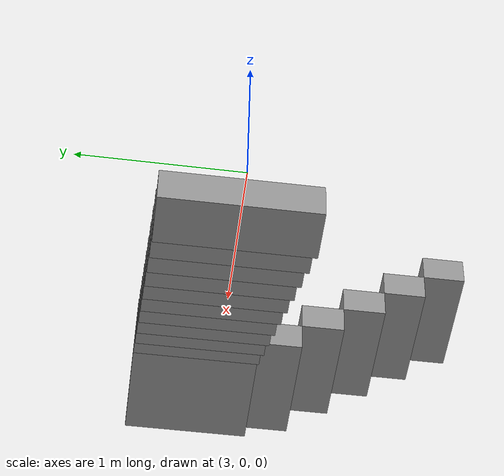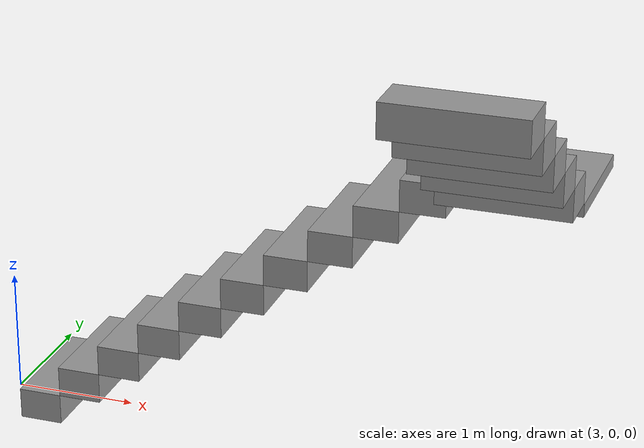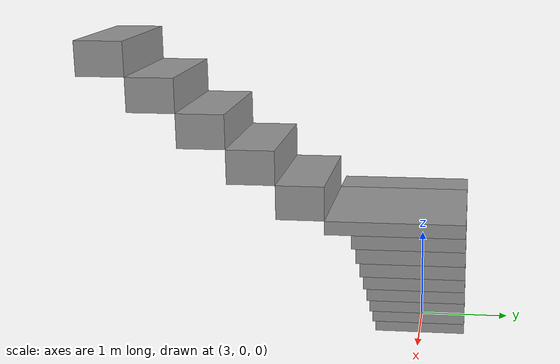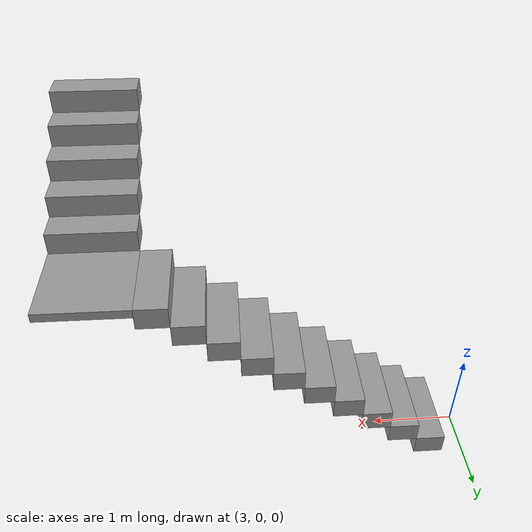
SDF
<?xml version='1.0'?>
<sdf version='1.6'>
  <model name='stairs_environment2'>
    <pose frame=''>7.5 -1.5 0 0 -0 1.57</pose>
    <link name='Floor_1'>
      <pose frame=''>0 0 2.5 0 -0 0</pose>
      <visual name='Floor_1_Visual_1'>
        <pose frame=''>1.5 0.25 -0.05 0 -0 0</pose>
        <geometry>
          <box>
            <size>1 1 0.1</size>
          </box>
        </geometry>
        <material>
          <script>
            <uri>file://media/materials/scripts/gazebo.material</uri>
            <name>Gazebo/Grey</name>
          </script>
          <ambient>1 1 1 1</ambient>
        </material>
        <meta>
          <layer>1</layer>
        </meta>
      </visual>
      <collision name='Floor_1_Collision_1'>
        <geometry>
          <box>
            <size>1 1 0.1</size>
          </box>
        </geometry>
        <pose frame=''>1.5 0.25 -0.05 0 -0 0</pose>
      </collision>
    </link>
    <link name='Stairs_10'>
      <visual name='Stairs_10_Visual_0'>
        <pose frame=''>1.5 4.075 0.125 0 -0 0</pose>
        <geometry>
          <box>
            <size>1 0.35 0.25</size>
          </box>
        </geometry>
        <material>
          <script>
            <uri>file://media/materials/scripts/gazebo.material</uri>
            <name>Gazebo/Grey</name>
          </script>
          <ambient>1 1 1 1</ambient>
        </material>
        <meta>
          <layer>0</layer>
        </meta>
      </visual>
      <collision name='Stairs_10_Collision_0'>
        <geometry>
          <box>
            <size>1 0.35 0.25</size>
          </box>
        </geometry>
        <pose frame=''>1.5 4.075 0.125 0 -0 0</pose>
      </collision>
      <visual name='Stairs_10_Visual_1'>
        <pose frame=''>1.5 3.725 0.375 0 -0 0</pose>
        <geometry>
          <box>
            <size>1 0.35 0.25</size>
          </box>
        </geometry>
        <material>
          <script>
            <uri>file://media/materials/scripts/gazebo.material</uri>
            <name>Gazebo/Grey</name>
          </script>
          <ambient>1 1 1 1</ambient>
        </material>
        <meta>
          <layer>0</layer>
        </meta>
      </visual>
      <collision name='Stairs_10_Collision_1'>
        <geometry>
          <box>
            <size>1 0.35 0.25</size>
          </box>
        </geometry>
        <pose frame=''>1.5 3.725 0.375 0 -0 0</pose>
      </collision>
      <visual name='Stairs_10_Visual_2'>
        <pose frame=''>1.5 3.375 0.625 0 -0 0</pose>
        <geometry>
          <box>
            <size>1 0.35 0.25</size>
          </box>
        </geometry>
        <material>
          <script>
            <uri>file://media/materials/scripts/gazebo.material</uri>
            <name>Gazebo/Grey</name>
          </script>
          <ambient>1 1 1 1</ambient>
        </material>
        <meta>
          <layer>0</layer>
        </meta>
      </visual>
      <collision name='Stairs_10_Collision_2'>
        <geometry>
          <box>
            <size>1 0.35 0.25</size>
          </box>
        </geometry>
        <pose frame=''>1.5 3.375 0.625 0 -0 0</pose>
      </collision>
      <visual name='Stairs_10_Visual_3'>
        <pose frame=''>1.5 3.025 0.875 0 -0 0</pose>
        <geometry>
          <box>
            <size>1 0.35 0.25</size>
          </box>
        </geometry>
        <material>
          <script>
            <uri>file://media/materials/scripts/gazebo.material</uri>
            <name>Gazebo/Grey</name>
          </script>
          <ambient>1 1 1 1</ambient>
        </material>
        <meta>
          <layer>0</layer>
        </meta>
      </visual>
      <collision name='Stairs_10_Collision_3'>
        <geometry>
          <box>
            <size>1 0.35 0.25</size>
          </box>
        </geometry>
        <pose frame=''>1.5 3.025 0.875 0 -0 0</pose>
      </collision>
      <visual name='Stairs_10_Visual_4'>
        <pose frame=''>1.5 2.675 1.125 0 -0 0</pose>
        <geometry>
          <box>
            <size>1 0.35 0.25</size>
          </box>
        </geometry>
        <material>
          <script>
            <uri>file://media/materials/scripts/gazebo.material</uri>
            <name>Gazebo/Grey</name>
          </script>
          <ambient>1 1 1 1</ambient>
        </material>
        <meta>
          <layer>0</layer>
        </meta>
      </visual>
      <collision name='Stairs_10_Collision_4'>
        <geometry>
          <box>
            <size>1 0.35 0.25</size>
          </box>
        </geometry>
        <pose frame=''>1.5 2.675 1.125 0 -0 0</pose>
      </collision>
      <visual name='Stairs_10_Visual_5'>
        <pose frame=''>1.5 2.325 1.375 0 -0 0</pose>
        <geometry>
          <box>
            <size>1 0.35 0.25</size>
          </box>
        </geometry>
        <material>
          <script>
            <uri>file://media/materials/scripts/gazebo.material</uri>
            <name>Gazebo/Grey</name>
          </script>
          <ambient>1 1 1 1</ambient>
        </material>
        <meta>
          <layer>0</layer>
        </meta>
      </visual>
      <collision name='Stairs_10_Collision_5'>
        <geometry>
          <box>
            <size>1 0.35 0.25</size>
          </box>
        </geometry>
        <pose frame=''>1.5 2.325 1.375 0 -0 0</pose>
      </collision>
      <visual name='Stairs_10_Visual_6'>
        <pose frame=''>1.5 1.975 1.625 0 -0 0</pose>
        <geometry>
          <box>
            <size>1 0.35 0.25</size>
          </box>
        </geometry>
        <material>
          <script>
            <uri>file://media/materials/scripts/gazebo.material</uri>
            <name>Gazebo/Grey</name>
          </script>
          <ambient>1 1 1 1</ambient>
        </material>
        <meta>
          <layer>0</layer>
        </meta>
      </visual>
      <collision name='Stairs_10_Collision_6'>
        <geometry>
          <box>
            <size>1 0.35 0.25</size>
          </box>
        </geometry>
        <pose frame=''>1.5 1.975 1.625 0 -0 0</pose>
      </collision>
      <visual name='Stairs_10_Visual_7'>
        <pose frame=''>1.5 1.625 1.875 0 -0 0</pose>
        <geometry>
          <box>
            <size>1 0.35 0.25</size>
          </box>
        </geometry>
        <material>
          <script>
            <uri>file://media/materials/scripts/gazebo.material</uri>
            <name>Gazebo/Grey</name>
          </script>
          <ambient>1 1 1 1</ambient>
        </material>
        <meta>
          <layer>0</layer>
        </meta>
      </visual>
      <collision name='Stairs_10_Collision_7'>
        <geometry>
          <box>
            <size>1 0.35 0.25</size>
          </box>
        </geometry>
        <pose frame=''>1.5 1.625 1.875 0 -0 0</pose>
      </collision>
      <visual name='Stairs_10_Visual_8'>
        <pose frame=''>1.5 1.275 2.125 0 -0 0</pose>
        <geometry>
          <box>
            <size>1 0.35 0.25</size>
          </box>
        </geometry>
        <material>
          <script>
            <uri>file://media/materials/scripts/gazebo.material</uri>
            <name>Gazebo/Grey</name>
          </script>
          <ambient>1 1 1 1</ambient>
        </material>
        <meta>
          <layer>0</layer>
        </meta>
      </visual>
      <collision name='Stairs_10_Collision_8'>
        <geometry>
          <box>
            <size>1 0.35 0.25</size>
          </box>
        </geometry>
        <pose frame=''>1.5 1.275 2.125 0 -0 0</pose>
      </collision>
      <visual name='Stairs_10_Visual_9'>
        <pose frame=''>1.5 0.925 2.375 0 -0 0</pose>
        <geometry>
          <box>
            <size>1 0.35 0.25</size>
          </box>
        </geometry>
        <material>
          <script>
            <uri>file://media/materials/scripts/gazebo.material</uri>
            <name>Gazebo/Grey</name>
          </script>
          <ambient>1 1 1 1</ambient>
        </material>
        <meta>
          <layer>0</layer>
        </meta>
      </visual>
      <collision name='Stairs_10_Collision_9'>
        <geometry>
          <box>
            <size>1 0.35 0.25</size>
          </box>
        </geometry>
        <pose frame=''>1.5 0.925 2.375 0 -0 0</pose>
      </collision>
    </link>
    <link name='Stairs_15'>
      <visual name='Stairs_15_Visual_0'>
        <pose frame=''>0.825 0.25 2.625 0 0 -1.5708</pose>
        <geometry>
          <box>
            <size>0.99 0.35 0.25</size>
          </box>
        </geometry>
        <material>
          <script>
            <uri>file://media/materials/scripts/gazebo.material</uri>
            <name>Gazebo/Grey</name>
          </script>
          <ambient>1 1 1 1</ambient>
        </material>
        <meta>
          <layer>1</layer>
        </meta>
      </visual>
      <collision name='Stairs_15_Collision_0'>
        <geometry>
          <box>
            <size>0.99 0.35 0.25</size>
          </box>
        </geometry>
        <pose frame=''>0.825 0.25 2.625 0 0 -1.5708</pose>
      </collision>
      <visual name='Stairs_15_Visual_1'>
        <pose frame=''>0.475 0.25 2.875 0 0 -1.5708</pose>
        <geometry>
          <box>
            <size>0.99 0.35 0.25</size>
          </box>
        </geometry>
        <material>
          <script>
            <uri>file://media/materials/scripts/gazebo.material</uri>
            <name>Gazebo/Grey</name>
          </script>
          <ambient>1 1 1 1</ambient>
        </material>
        <meta>
          <layer>1</layer>
        </meta>
      </visual>
      <collision name='Stairs_15_Collision_1'>
        <geometry>
          <box>
            <size>0.99 0.35 0.25</size>
          </box>
        </geometry>
        <pose frame=''>0.475 0.25 2.875 0 0 -1.5708</pose>
      </collision>
      <visual name='Stairs_15_Visual_2'>
        <pose frame=''>0.125 0.25 3.125 0 0 -1.5708</pose>
        <geometry>
          <box>
            <size>0.99 0.35 0.25</size>
          </box>
        </geometry>
        <material>
          <script>
            <uri>file://media/materials/scripts/gazebo.material</uri>
            <name>Gazebo/Grey</name>
          </script>
          <ambient>1 1 1 1</ambient>
        </material>
        <meta>
          <layer>1</layer>
        </meta>
      </visual>
      <collision name='Stairs_15_Collision_2'>
        <geometry>
          <box>
            <size>0.99 0.35 0.25</size>
          </box>
        </geometry>
        <pose frame=''>0.125 0.25 3.125 0 0 -1.5708</pose>
      </collision>
      <visual name='Stairs_15_Visual_3'>
        <pose frame=''>-0.225 0.25 3.375 0 0 -1.5708</pose>
        <geometry>
          <box>
            <size>0.99 0.35 0.25</size>
          </box>
        </geometry>
        <material>
          <script>
            <uri>file://media/materials/scripts/gazebo.material</uri>
            <name>Gazebo/Grey</name>
          </script>
          <ambient>1 1 1 1</ambient>
        </material>
        <meta>
          <layer>1</layer>
        </meta>
      </visual>
      <collision name='Stairs_15_Collision_3'>
        <geometry>
          <box>
            <size>0.99 0.35 0.25</size>
          </box>
        </geometry>
        <pose frame=''>-0.225 0.25 3.375 0 0 -1.5708</pose>
      </collision>
      <visual name='Stairs_15_Visual_4'>
        <pose frame=''>-0.575 0.25 3.625 0 0 -1.5708</pose>
        <geometry>
          <box>
            <size>0.99 0.35 0.25</size>
          </box>
        </geometry>
        <material>
          <script>
            <uri>file://media/materials/scripts/gazebo.material</uri>
            <name>Gazebo/Grey</name>
          </script>
          <ambient>1 1 1 1</ambient>
        </material>
        <meta>
          <layer>1</layer>
        </meta>
      </visual>
      <collision name='Stairs_15_Collision_4'>
        <geometry>
          <box>
            <size>0.99 0.35 0.25</size>
          </box>
        </geometry>
        <pose frame=''>-0.575 0.25 3.625 0 0 -1.5708</pose>
      </collision>
    </link>
    <static>1</static>
  </model>
</sdf>
